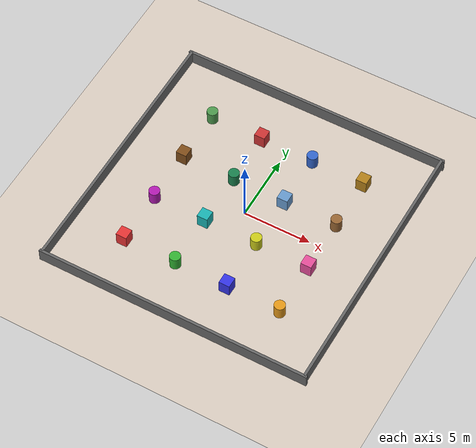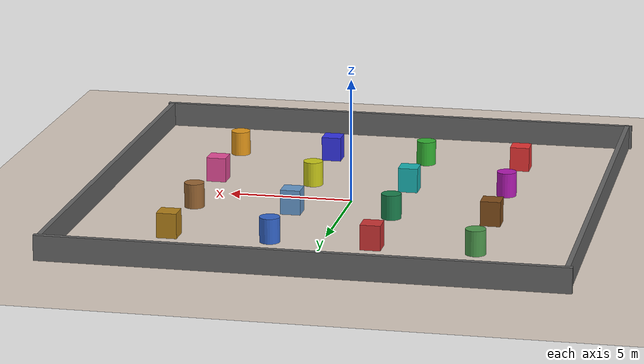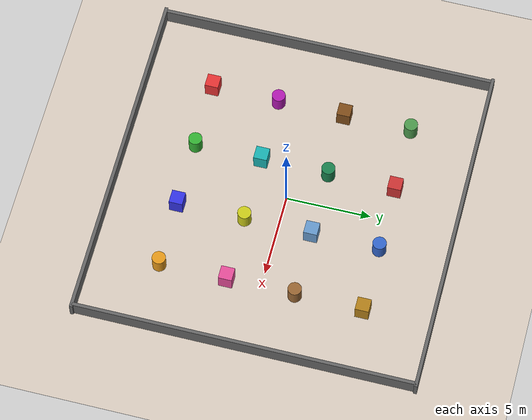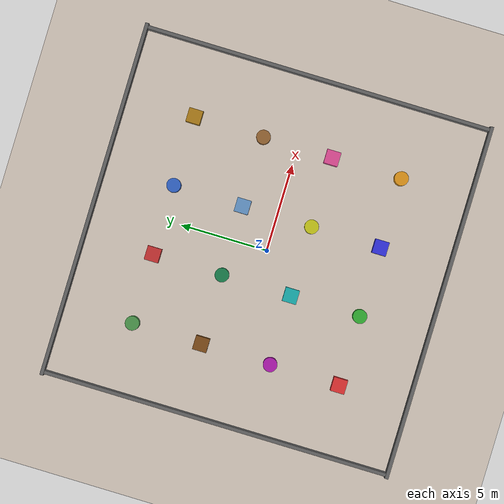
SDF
<?xml version="1.0" ?>
<!-- WORLD: Grid — 4×4 grid of alternating cylinders and boxes -->
<sdf version="1.6">
  <world name="default">
    <physics name="1ms" type="ignored"><max_step_size>0.001</max_step_size><real_time_factor>1.0</real_time_factor></physics>
    <plugin filename="libignition-gazebo-physics-system.so" name="ignition::gazebo::systems::Physics"/>
    <plugin filename="libignition-gazebo-user-commands-system.so" name="ignition::gazebo::systems::UserCommands"/>
    <plugin filename="libignition-gazebo-scene-broadcaster-system.so" name="ignition::gazebo::systems::SceneBroadcaster"/>
    <light type="directional" name="sun"><cast_shadows>true</cast_shadows><pose>0 0 10 0 0 0</pose><diffuse>0.85 0.85 0.85 1</diffuse><specular>0.2 0.2 0.2 1</specular><attenuation><range>1000</range><constant>0.9</constant><linear>0.01</linear><quadratic>0.001</quadratic></attenuation><direction>-0.5 0.1 -0.9</direction></light>
    <model name="ground"><static>true</static><link name="l"><collision name="c"><geometry><plane><normal>0 0 1</normal><size>100 100</size></plane></geometry></collision><visual name="v"><geometry><plane><normal>0 0 1</normal><size>100 100</size></plane></geometry><material><ambient>0.85 0.8 0.75 1</ambient><diffuse>0.85 0.8 0.75 1</diffuse></material></visual></link></model>
    <model name="wn"><static>true</static><pose>0 10 0.5 0 0 0</pose><link name="l"><collision name="c"><geometry><box><size>20.4 0.2 1</size></box></geometry></collision><visual name="v"><geometry><box><size>20.4 0.2 1</size></box></geometry><material><ambient>0.4 0.4 0.4 1</ambient><diffuse>0.4 0.4 0.4 1</diffuse></material></visual></link></model>
    <model name="ws"><static>true</static><pose>0 -10 0.5 0 0 0</pose><link name="l"><collision name="c"><geometry><box><size>20.4 0.2 1</size></box></geometry></collision><visual name="v"><geometry><box><size>20.4 0.2 1</size></box></geometry><material><ambient>0.4 0.4 0.4 1</ambient><diffuse>0.4 0.4 0.4 1</diffuse></material></visual></link></model>
    <model name="we"><static>true</static><pose>10 0 0.5 0 0 0</pose><link name="l"><collision name="c"><geometry><box><size>0.2 20 1</size></box></geometry></collision><visual name="v"><geometry><box><size>0.2 20 1</size></box></geometry><material><ambient>0.4 0.4 0.4 1</ambient><diffuse>0.4 0.4 0.4 1</diffuse></material></visual></link></model>
    <model name="ww"><static>true</static><pose>-10 0 0.5 0 0 0</pose><link name="l"><collision name="c"><geometry><box><size>0.2 20 1</size></box></geometry></collision><visual name="v"><geometry><box><size>0.2 20 1</size></box></geometry><material><ambient>0.4 0.4 0.4 1</ambient><diffuse>0.4 0.4 0.4 1</diffuse></material></visual></link></model>

    <!-- 4×4 checkerboard pattern: boxes at "white" squares, cylinders at "black" -->
    <!-- Row 1 (y=-6): box, cyl, box, cyl -->
    <model name="g11"><static>true</static><pose>-6 -6 0.5 0 0 0</pose><link name="l"><collision name="c"><geometry><box><size>0.8 0.8 1</size></box></geometry></collision><visual name="v"><geometry><box><size>0.8 0.8 1</size></box></geometry><material><ambient>0.9 0.2 0.2 1</ambient><diffuse>0.9 0.2 0.2 1</diffuse></material></visual></link></model>
    <model name="g12"><static>true</static><pose>-2 -6 0.5 0 0 0</pose><link name="l"><collision name="c"><geometry><cylinder><radius>0.4</radius><length>1</length></cylinder></geometry></collision><visual name="v"><geometry><cylinder><radius>0.4</radius><length>1</length></cylinder></geometry><material><ambient>0.2 0.7 0.2 1</ambient><diffuse>0.2 0.7 0.2 1</diffuse></material></visual></link></model>
    <model name="g13"><static>true</static><pose>2 -6 0.5 0 0 0</pose><link name="l"><collision name="c"><geometry><box><size>0.8 0.8 1</size></box></geometry></collision><visual name="v"><geometry><box><size>0.8 0.8 1</size></box></geometry><material><ambient>0.2 0.2 0.9 1</ambient><diffuse>0.2 0.2 0.9 1</diffuse></material></visual></link></model>
    <model name="g14"><static>true</static><pose>6 -6 0.5 0 0 0</pose><link name="l"><collision name="c"><geometry><cylinder><radius>0.4</radius><length>1</length></cylinder></geometry></collision><visual name="v"><geometry><cylinder><radius>0.4</radius><length>1</length></cylinder></geometry><material><ambient>0.9 0.6 0.1 1</ambient><diffuse>0.9 0.6 0.1 1</diffuse></material></visual></link></model>
    <!-- Row 2 (y=-2): cyl, box, cyl, box -->
    <model name="g21"><static>true</static><pose>-6 -2 0.5 0 0 0</pose><link name="l"><collision name="c"><geometry><cylinder><radius>0.4</radius><length>1</length></cylinder></geometry></collision><visual name="v"><geometry><cylinder><radius>0.4</radius><length>1</length></cylinder></geometry><material><ambient>0.7 0.1 0.7 1</ambient><diffuse>0.7 0.1 0.7 1</diffuse></material></visual></link></model>
    <model name="g22"><static>true</static><pose>-2 -2 0.5 0 0 0</pose><link name="l"><collision name="c"><geometry><box><size>0.8 0.8 1</size></box></geometry></collision><visual name="v"><geometry><box><size>0.8 0.8 1</size></box></geometry><material><ambient>0.1 0.7 0.7 1</ambient><diffuse>0.1 0.7 0.7 1</diffuse></material></visual></link></model>
    <model name="g23"><static>true</static><pose>2 -2 0.5 0 0 0</pose><link name="l"><collision name="c"><geometry><cylinder><radius>0.4</radius><length>1</length></cylinder></geometry></collision><visual name="v"><geometry><cylinder><radius>0.4</radius><length>1</length></cylinder></geometry><material><ambient>0.8 0.8 0.1 1</ambient><diffuse>0.8 0.8 0.1 1</diffuse></material></visual></link></model>
    <model name="g24"><static>true</static><pose>6 -2 0.5 0 0 0</pose><link name="l"><collision name="c"><geometry><box><size>0.8 0.8 1</size></box></geometry></collision><visual name="v"><geometry><box><size>0.8 0.8 1</size></box></geometry><material><ambient>0.9 0.3 0.6 1</ambient><diffuse>0.9 0.3 0.6 1</diffuse></material></visual></link></model>
    <!-- Row 3 (y=2): box, cyl, box, cyl -->
    <model name="g31"><static>true</static><pose>-6 2 0.5 0 0 0</pose><link name="l"><collision name="c"><geometry><box><size>0.8 0.8 1</size></box></geometry></collision><visual name="v"><geometry><box><size>0.8 0.8 1</size></box></geometry><material><ambient>0.5 0.3 0.1 1</ambient><diffuse>0.5 0.3 0.1 1</diffuse></material></visual></link></model>
    <model name="g32"><static>true</static><pose>-2 2 0.5 0 0 0</pose><link name="l"><collision name="c"><geometry><cylinder><radius>0.4</radius><length>1</length></cylinder></geometry></collision><visual name="v"><geometry><cylinder><radius>0.4</radius><length>1</length></cylinder></geometry><material><ambient>0.1 0.5 0.3 1</ambient><diffuse>0.1 0.5 0.3 1</diffuse></material></visual></link></model>
    <model name="g33"><static>true</static><pose>2 2 0.5 0 0 0</pose><link name="l"><collision name="c"><geometry><box><size>0.8 0.8 1</size></box></geometry></collision><visual name="v"><geometry><box><size>0.8 0.8 1</size></box></geometry><material><ambient>0.4 0.6 0.8 1</ambient><diffuse>0.4 0.6 0.8 1</diffuse></material></visual></link></model>
    <model name="g34"><static>true</static><pose>6 2 0.5 0 0 0</pose><link name="l"><collision name="c"><geometry><cylinder><radius>0.4</radius><length>1</length></cylinder></geometry></collision><visual name="v"><geometry><cylinder><radius>0.4</radius><length>1</length></cylinder></geometry><material><ambient>0.6 0.4 0.2 1</ambient><diffuse>0.6 0.4 0.2 1</diffuse></material></visual></link></model>
    <!-- Row 4 (y=6): cyl, box, cyl, box -->
    <model name="g41"><static>true</static><pose>-6 6 0.5 0 0 0</pose><link name="l"><collision name="c"><geometry><cylinder><radius>0.4</radius><length>1</length></cylinder></geometry></collision><visual name="v"><geometry><cylinder><radius>0.4</radius><length>1</length></cylinder></geometry><material><ambient>0.3 0.6 0.3 1</ambient><diffuse>0.3 0.6 0.3 1</diffuse></material></visual></link></model>
    <model name="g42"><static>true</static><pose>-2 6 0.5 0 0 0</pose><link name="l"><collision name="c"><geometry><box><size>0.8 0.8 1</size></box></geometry></collision><visual name="v"><geometry><box><size>0.8 0.8 1</size></box></geometry><material><ambient>0.8 0.2 0.2 1</ambient><diffuse>0.8 0.2 0.2 1</diffuse></material></visual></link></model>
    <model name="g43"><static>true</static><pose>2 6 0.5 0 0 0</pose><link name="l"><collision name="c"><geometry><cylinder><radius>0.4</radius><length>1</length></cylinder></geometry></collision><visual name="v"><geometry><cylinder><radius>0.4</radius><length>1</length></cylinder></geometry><material><ambient>0.2 0.4 0.8 1</ambient><diffuse>0.2 0.4 0.8 1</diffuse></material></visual></link></model>
    <model name="g44"><static>true</static><pose>6 6 0.5 0 0 0</pose><link name="l"><collision name="c"><geometry><box><size>0.8 0.8 1</size></box></geometry></collision><visual name="v"><geometry><box><size>0.8 0.8 1</size></box></geometry><material><ambient>0.7 0.5 0.1 1</ambient><diffuse>0.7 0.5 0.1 1</diffuse></material></visual></link></model>
  </world>
</sdf>
